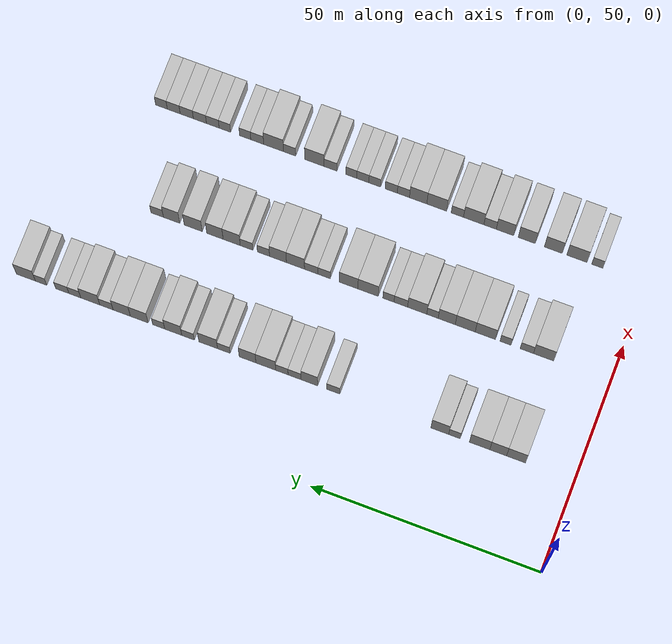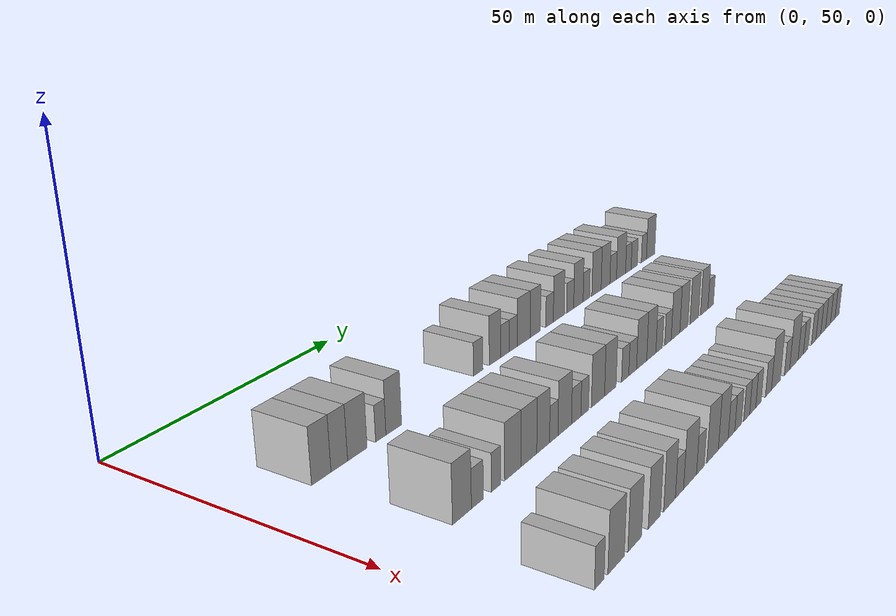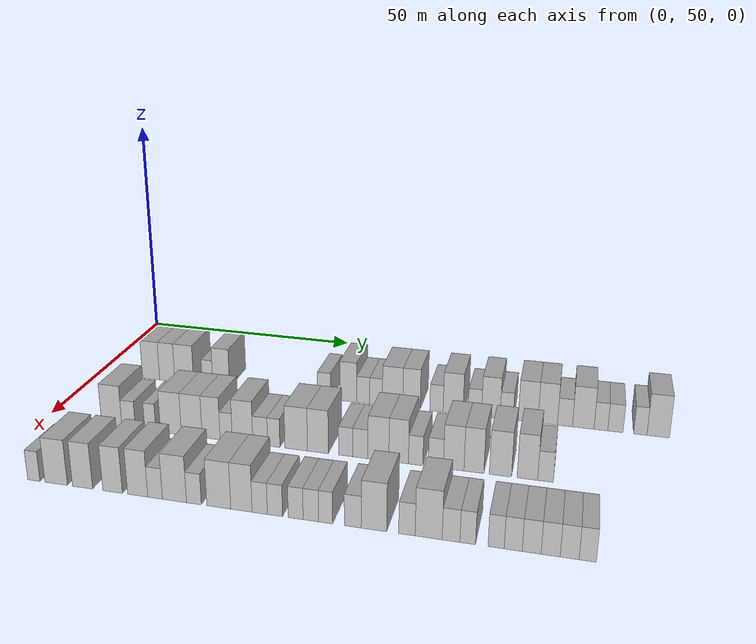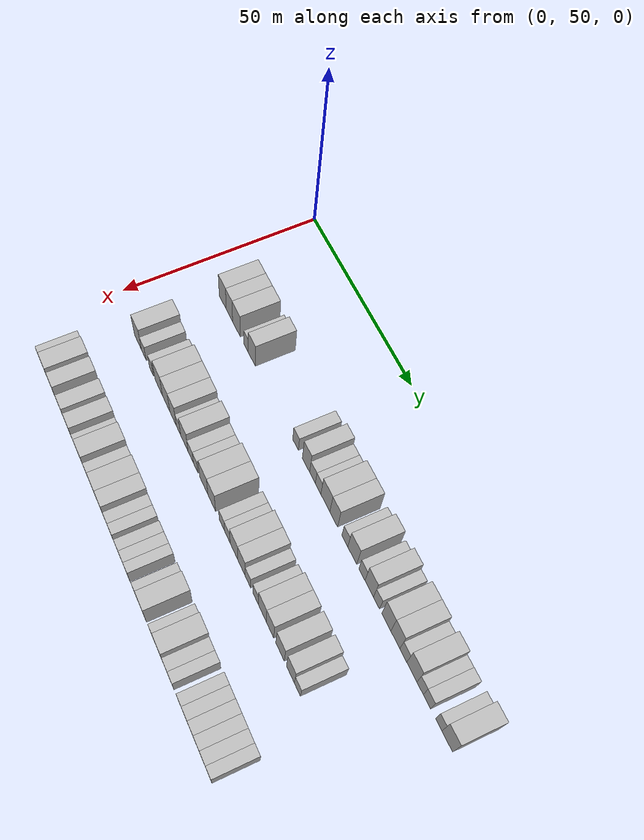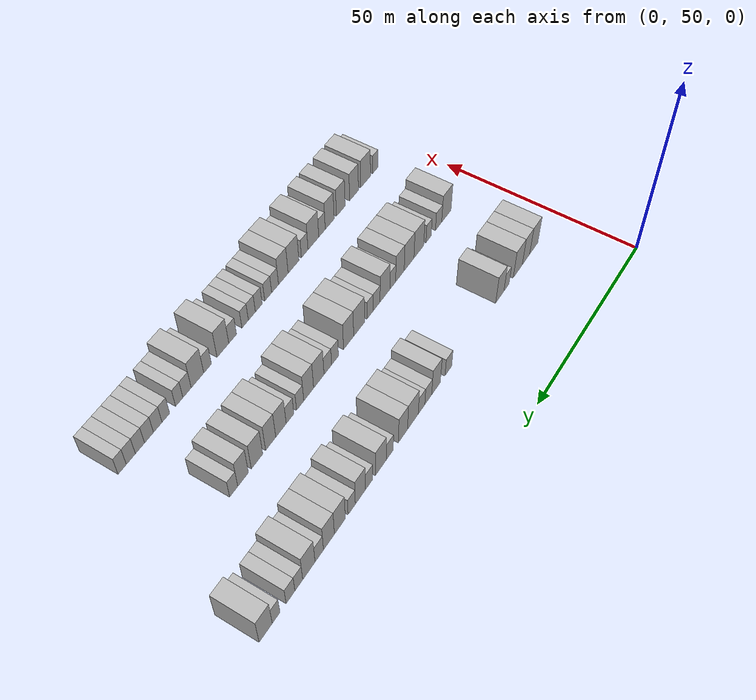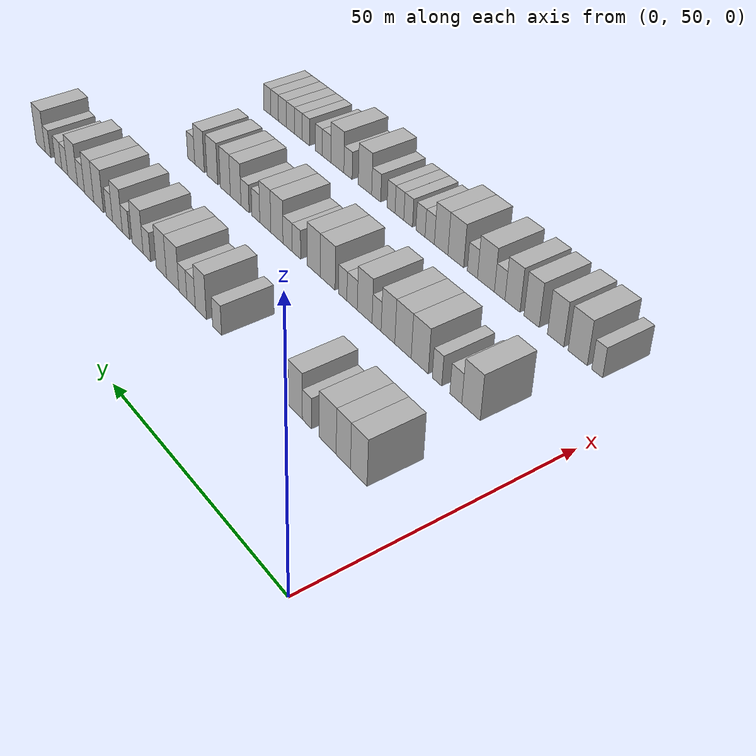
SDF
<sdf version="1.6">
 <world name="default">
  <model name="building_112">
   <static>1</static>
   <pose>25.0000 62.6723 0 0.000000 0.000000 0.000000</pose>
   <link name="link">
    <pose>0 0 4.50 0 0 0</pose>
    <collision name="collision"><geometry><box><size>10.0000 4.1048 9.0000</size></box></geometry></collision>
    <visual name="visual">
     <cast_shadows>0</cast_shadows>
     <geometry><box><size>10.0000 4.1048 9.0000</size></box></geometry>
     <material>
      <script>
       <uri>model://HANNAS_wall/materials/scripts</uri>
       <uri>model://HANNAS_wall/materials/textures</uri>
       <name>vrc/HANNAS_wall</name>
      </script>
     </material>
    </visual>
   </link>
  </model>
  <model name="building_113">
   <static>1</static>
   <pose>25.0000 66.5474 0 0.000000 0.000000 0.000000</pose>
   <link name="link">
    <pose>0 0 4.50 0 0 0</pose>
    <collision name="collision"><geometry><box><size>10.0000 3.6453 9.0000</size></box></geometry></collision>
    <visual name="visual">
     <cast_shadows>0</cast_shadows>
     <geometry><box><size>10.0000 3.6453 9.0000</size></box></geometry>
     <material>
      <script>
       <uri>model://HANNAS_wall/materials/scripts</uri>
       <uri>model://HANNAS_wall/materials/textures</uri>
       <name>vrc/HANNAS_wall</name>
      </script>
     </material>
    </visual>
   </link>
  </model>
  <model name="building_114">
   <static>1</static>
   <pose>25.0000 70.5929 0 0.000000 0.000000 0.000000</pose>
   <link name="link">
    <pose>0 0 4.50 0 0 0</pose>
    <collision name="collision"><geometry><box><size>10.0000 4.4458 9.0000</size></box></geometry></collision>
    <visual name="visual">
     <cast_shadows>0</cast_shadows>
     <geometry><box><size>10.0000 4.4458 9.0000</size></box></geometry>
     <material>
      <script>
       <uri>model://HANNAS_wall/materials/scripts</uri>
       <uri>model://HANNAS_wall/materials/textures</uri>
       <name>vrc/HANNAS_wall</name>
      </script>
     </material>
    </visual>
   </link>
  </model>
  <model name="building_115">
   <static>1</static>
   <pose>25.0000 76.0600 0 0.000000 0.000000 0.000000</pose>
   <link name="link">
    <pose>0 0 3.00 0 0 0</pose>
    <collision name="collision"><geometry><box><size>10.0000 2.4885 6.0000</size></box></geometry></collision>
    <visual name="visual">
     <cast_shadows>0</cast_shadows>
     <geometry><box><size>10.0000 2.4885 6.0000</size></box></geometry>
     <material>
      <script>
       <uri>model://HANNAS_wall/materials/scripts</uri>
       <uri>model://HANNAS_wall/materials/textures</uri>
       <name>vrc/HANNAS_wall</name>
      </script>
     </material>
    </visual>
   </link>
  </model>
  <model name="building_116">
   <static>1</static>
   <pose>25.0000 79.2473 0 0.000000 0.000000 0.000000</pose>
   <link name="link">
    <pose>0 0 4.50 0 0 0</pose>
    <collision name="collision"><geometry><box><size>10.0000 3.8861 9.0000</size></box></geometry></collision>
    <visual name="visual">
     <cast_shadows>0</cast_shadows>
     <geometry><box><size>10.0000 3.8861 9.0000</size></box></geometry>
     <material>
      <script>
       <uri>model://HANNAS_wall/materials/scripts</uri>
       <uri>model://HANNAS_wall/materials/textures</uri>
       <name>vrc/HANNAS_wall</name>
      </script>
     </material>
    </visual>
   </link>
  </model>
  <model name="building_117">
   <static>1</static>
   <pose>25.0000 102.5071 0 0.000000 0.000000 0.000000</pose>
   <link name="link">
    <pose>0 0 3.00 0 0 0</pose>
    <collision name="collision"><geometry><box><size>10.0000 2.8778 6.0000</size></box></geometry></collision>
    <visual name="visual">
     <cast_shadows>0</cast_shadows>
     <geometry><box><size>10.0000 2.8778 6.0000</size></box></geometry>
     <material>
      <script>
       <uri>model://HANNAS_wall/materials/scripts</uri>
       <uri>model://HANNAS_wall/materials/textures</uri>
       <name>vrc/HANNAS_wall</name>
      </script>
     </material>
    </visual>
   </link>
  </model>
  <model name="building_118">
   <static>1</static>
   <pose>25.0000 107.7739 0 0.000000 0.000000 0.000000</pose>
   <link name="link">
    <pose>0 0 4.50 0 0 0</pose>
    <collision name="collision"><geometry><box><size>10.0000 3.6558 9.0000</size></box></geometry></collision>
    <visual name="visual">
     <cast_shadows>0</cast_shadows>
     <geometry><box><size>10.0000 3.6558 9.0000</size></box></geometry>
     <material>
      <script>
       <uri>model://HANNAS_wall/materials/scripts</uri>
       <uri>model://HANNAS_wall/materials/textures</uri>
       <name>vrc/HANNAS_wall</name>
      </script>
     </material>
    </visual>
   </link>
  </model>
  <model name="building_119">
   <static>1</static>
   <pose>25.0000 111.0156 0 0.000000 0.000000 0.000000</pose>
   <link name="link">
    <pose>0 0 3.00 0 0 0</pose>
    <collision name="collision"><geometry><box><size>10.0000 2.8276 6.0000</size></box></geometry></collision>
    <visual name="visual">
     <cast_shadows>0</cast_shadows>
     <geometry><box><size>10.0000 2.8276 6.0000</size></box></geometry>
     <material>
      <script>
       <uri>model://HANNAS_wall/materials/scripts</uri>
       <uri>model://HANNAS_wall/materials/textures</uri>
       <name>vrc/HANNAS_wall</name>
      </script>
     </material>
    </visual>
   </link>
  </model>
  <model name="building_120">
   <static>1</static>
   <pose>25.0000 113.7852 0 0.000000 0.000000 0.000000</pose>
   <link name="link">
    <pose>0 0 3.00 0 0 0</pose>
    <collision name="collision"><geometry><box><size>10.0000 2.7114 6.0000</size></box></geometry></collision>
    <visual name="visual">
     <cast_shadows>0</cast_shadows>
     <geometry><box><size>10.0000 2.7114 6.0000</size></box></geometry>
     <material>
      <script>
       <uri>model://HANNAS_wall/materials/scripts</uri>
       <uri>model://HANNAS_wall/materials/textures</uri>
       <name>vrc/HANNAS_wall</name>
      </script>
     </material>
    </visual>
   </link>
  </model>
  <model name="building_121">
   <static>1</static>
   <pose>25.0000 117.3143 0 0.000000 0.000000 0.000000</pose>
   <link name="link">
    <pose>0 0 4.50 0 0 0</pose>
    <collision name="collision"><geometry><box><size>10.0000 4.3468 9.0000</size></box></geometry></collision>
    <visual name="visual">
     <cast_shadows>0</cast_shadows>
     <geometry><box><size>10.0000 4.3468 9.0000</size></box></geometry>
     <material>
      <script>
       <uri>model://HANNAS_wall/materials/scripts</uri>
       <uri>model://HANNAS_wall/materials/textures</uri>
       <name>vrc/HANNAS_wall</name>
      </script>
     </material>
    </visual>
   </link>
  </model>
  <model name="building_122">
   <static>1</static>
   <pose>25.0000 121.3257 0 0.000000 0.000000 0.000000</pose>
   <link name="link">
    <pose>0 0 4.50 0 0 0</pose>
    <collision name="collision"><geometry><box><size>10.0000 3.6759 9.0000</size></box></geometry></collision>
    <visual name="visual">
     <cast_shadows>0</cast_shadows>
     <geometry><box><size>10.0000 3.6759 9.0000</size></box></geometry>
     <material>
      <script>
       <uri>model://HANNAS_wall/materials/scripts</uri>
       <uri>model://HANNAS_wall/materials/textures</uri>
       <name>vrc/HANNAS_wall</name>
      </script>
     </material>
    </visual>
   </link>
  </model>
  <model name="building_123">
   <static>1</static>
   <pose>25.0000 126.5482 0 0.000000 0.000000 0.000000</pose>
   <link name="link">
    <pose>0 0 3.00 0 0 0</pose>
    <collision name="collision"><geometry><box><size>10.0000 2.7691 6.0000</size></box></geometry></collision>
    <visual name="visual">
     <cast_shadows>0</cast_shadows>
     <geometry><box><size>10.0000 2.7691 6.0000</size></box></geometry>
     <material>
      <script>
       <uri>model://HANNAS_wall/materials/scripts</uri>
       <uri>model://HANNAS_wall/materials/textures</uri>
       <name>vrc/HANNAS_wall</name>
      </script>
     </material>
    </visual>
   </link>
  </model>
  <model name="building_124">
   <static>1</static>
   <pose>25.0000 129.9904 0 0.000000 0.000000 0.000000</pose>
   <link name="link">
    <pose>0 0 4.50 0 0 0</pose>
    <collision name="collision"><geometry><box><size>10.0000 4.1153 9.0000</size></box></geometry></collision>
    <visual name="visual">
     <cast_shadows>0</cast_shadows>
     <geometry><box><size>10.0000 4.1153 9.0000</size></box></geometry>
     <material>
      <script>
       <uri>model://HANNAS_wall/materials/scripts</uri>
       <uri>model://HANNAS_wall/materials/textures</uri>
       <name>vrc/HANNAS_wall</name>
      </script>
     </material>
    </visual>
   </link>
  </model>
  <model name="building_125">
   <static>1</static>
   <pose>25.0000 134.4301 0 0.000000 0.000000 0.000000</pose>
   <link name="link">
    <pose>0 0 3.00 0 0 0</pose>
    <collision name="collision"><geometry><box><size>10.0000 2.7641 6.0000</size></box></geometry></collision>
    <visual name="visual">
     <cast_shadows>0</cast_shadows>
     <geometry><box><size>10.0000 2.7641 6.0000</size></box></geometry>
     <material>
      <script>
       <uri>model://HANNAS_wall/materials/scripts</uri>
       <uri>model://HANNAS_wall/materials/textures</uri>
       <name>vrc/HANNAS_wall</name>
      </script>
     </material>
    </visual>
   </link>
  </model>
  <model name="building_126">
   <static>1</static>
   <pose>25.0000 137.7048 0 0.000000 0.000000 0.000000</pose>
   <link name="link">
    <pose>0 0 4.50 0 0 0</pose>
    <collision name="collision"><geometry><box><size>10.0000 3.7851 9.0000</size></box></geometry></collision>
    <visual name="visual">
     <cast_shadows>0</cast_shadows>
     <geometry><box><size>10.0000 3.7851 9.0000</size></box></geometry>
     <material>
      <script>
       <uri>model://HANNAS_wall/materials/scripts</uri>
       <uri>model://HANNAS_wall/materials/textures</uri>
       <name>vrc/HANNAS_wall</name>
      </script>
     </material>
    </visual>
   </link>
  </model>
  <model name="building_127">
   <static>1</static>
   <pose>25.0000 140.9223 0 0.000000 0.000000 0.000000</pose>
   <link name="link">
    <pose>0 0 3.00 0 0 0</pose>
    <collision name="collision"><geometry><box><size>10.0000 2.6499 6.0000</size></box></geometry></collision>
    <visual name="visual">
     <cast_shadows>0</cast_shadows>
     <geometry><box><size>10.0000 2.6499 6.0000</size></box></geometry>
     <material>
      <script>
       <uri>model://HANNAS_wall/materials/scripts</uri>
       <uri>model://HANNAS_wall/materials/textures</uri>
       <name>vrc/HANNAS_wall</name>
      </script>
     </material>
    </visual>
   </link>
  </model>
  <model name="building_128">
   <static>1</static>
   <pose>25.0000 145.2119 0 0.000000 0.000000 0.000000</pose>
   <link name="link">
    <pose>0 0 4.50 0 0 0</pose>
    <collision name="collision"><geometry><box><size>10.0000 3.9294 9.0000</size></box></geometry></collision>
    <visual name="visual">
     <cast_shadows>0</cast_shadows>
     <geometry><box><size>10.0000 3.9294 9.0000</size></box></geometry>
     <material>
      <script>
       <uri>model://HANNAS_wall/materials/scripts</uri>
       <uri>model://HANNAS_wall/materials/textures</uri>
       <name>vrc/HANNAS_wall</name>
      </script>
     </material>
    </visual>
   </link>
  </model>
  <model name="building_129">
   <static>1</static>
   <pose>25.0000 149.1030 0 0.000000 0.000000 0.000000</pose>
   <link name="link">
    <pose>0 0 4.50 0 0 0</pose>
    <collision name="collision"><geometry><box><size>10.0000 3.8530 9.0000</size></box></geometry></collision>
    <visual name="visual">
     <cast_shadows>0</cast_shadows>
     <geometry><box><size>10.0000 3.8530 9.0000</size></box></geometry>
     <material>
      <script>
       <uri>model://HANNAS_wall/materials/scripts</uri>
       <uri>model://HANNAS_wall/materials/textures</uri>
       <name>vrc/HANNAS_wall</name>
      </script>
     </material>
    </visual>
   </link>
  </model>
  <model name="building_130">
   <static>1</static>
   <pose>25.0000 152.4961 0 0.000000 0.000000 0.000000</pose>
   <link name="link">
    <pose>0 0 3.00 0 0 0</pose>
    <collision name="collision"><geometry><box><size>10.0000 2.9331 6.0000</size></box></geometry></collision>
    <visual name="visual">
     <cast_shadows>0</cast_shadows>
     <geometry><box><size>10.0000 2.9331 6.0000</size></box></geometry>
     <material>
      <script>
       <uri>model://HANNAS_wall/materials/scripts</uri>
       <uri>model://HANNAS_wall/materials/textures</uri>
       <name>vrc/HANNAS_wall</name>
      </script>
     </material>
    </visual>
   </link>
  </model>
  <model name="building_131">
   <static>1</static>
   <pose>25.0000 156.0684 0 0.000000 0.000000 0.000000</pose>
   <link name="link">
    <pose>0 0 4.50 0 0 0</pose>
    <collision name="collision"><geometry><box><size>10.0000 4.2115 9.0000</size></box></geometry></collision>
    <visual name="visual">
     <cast_shadows>0</cast_shadows>
     <geometry><box><size>10.0000 4.2115 9.0000</size></box></geometry>
     <material>
      <script>
       <uri>model://HANNAS_wall/materials/scripts</uri>
       <uri>model://HANNAS_wall/materials/textures</uri>
       <name>vrc/HANNAS_wall</name>
      </script>
     </material>
    </visual>
   </link>
  </model>
  <model name="building_132">
   <static>1</static>
   <pose>25.0000 159.4920 0 0.000000 0.000000 0.000000</pose>
   <link name="link">
    <pose>0 0 3.00 0 0 0</pose>
    <collision name="collision"><geometry><box><size>10.0000 2.6358 6.0000</size></box></geometry></collision>
    <visual name="visual">
     <cast_shadows>0</cast_shadows>
     <geometry><box><size>10.0000 2.6358 6.0000</size></box></geometry>
     <material>
      <script>
       <uri>model://HANNAS_wall/materials/scripts</uri>
       <uri>model://HANNAS_wall/materials/textures</uri>
       <name>vrc/HANNAS_wall</name>
      </script>
     </material>
    </visual>
   </link>
  </model>
  <model name="building_133">
   <static>1</static>
   <pose>25.0000 162.2747 0 0.000000 0.000000 0.000000</pose>
   <link name="link">
    <pose>0 0 3.00 0 0 0</pose>
    <collision name="collision"><geometry><box><size>10.0000 2.9295 6.0000</size></box></geometry></collision>
    <visual name="visual">
     <cast_shadows>0</cast_shadows>
     <geometry><box><size>10.0000 2.9295 6.0000</size></box></geometry>
     <material>
      <script>
       <uri>model://HANNAS_wall/materials/scripts</uri>
       <uri>model://HANNAS_wall/materials/textures</uri>
       <name>vrc/HANNAS_wall</name>
      </script>
     </material>
    </visual>
   </link>
  </model>
  <model name="building_134">
   <static>1</static>
   <pose>25.0000 166.9979 0 0.000000 0.000000 0.000000</pose>
   <link name="link">
    <pose>0 0 3.00 0 0 0</pose>
    <collision name="collision"><geometry><box><size>10.0000 2.5170 6.0000</size></box></geometry></collision>
    <visual name="visual">
     <cast_shadows>0</cast_shadows>
     <geometry><box><size>10.0000 2.5170 6.0000</size></box></geometry>
     <material>
      <script>
       <uri>model://HANNAS_wall/materials/scripts</uri>
       <uri>model://HANNAS_wall/materials/textures</uri>
       <name>vrc/HANNAS_wall</name>
      </script>
     </material>
    </visual>
   </link>
  </model>
  <model name="building_135">
   <static>1</static>
   <pose>25.0000 170.3654 0 0.000000 0.000000 0.000000</pose>
   <link name="link">
    <pose>0 0 4.50 0 0 0</pose>
    <collision name="collision"><geometry><box><size>10.0000 4.2181 9.0000</size></box></geometry></collision>
    <visual name="visual">
     <cast_shadows>0</cast_shadows>
     <geometry><box><size>10.0000 4.2181 9.0000</size></box></geometry>
     <material>
      <script>
       <uri>model://HANNAS_wall/materials/scripts</uri>
       <uri>model://HANNAS_wall/materials/textures</uri>
       <name>vrc/HANNAS_wall</name>
      </script>
     </material>
    </visual>
   </link>
  </model>
  <model name="building_288">
   <static>1</static>
   <pose>47.0000 64.6336 0 0.000000 0.000000 0.000000</pose>
   <link name="link">
    <pose>0 0 4.50 0 0 0</pose>
    <collision name="collision"><geometry><box><size>10.0000 4.4258 9.0000</size></box></geometry></collision>
    <visual name="visual">
     <cast_shadows>0</cast_shadows>
     <geometry><box><size>10.0000 4.4258 9.0000</size></box></geometry>
     <material>
      <script>
       <uri>model://HANNAS_wall/materials/scripts</uri>
       <uri>model://HANNAS_wall/materials/textures</uri>
       <name>vrc/HANNAS_wall</name>
      </script>
     </material>
    </visual>
   </link>
  </model>
  <model name="building_289">
   <static>1</static>
   <pose>47.0000 68.3060 0 0.000000 0.000000 0.000000</pose>
   <link name="link">
    <pose>0 0 3.00 0 0 0</pose>
    <collision name="collision"><geometry><box><size>10.0000 2.9191 6.0000</size></box></geometry></collision>
    <visual name="visual">
     <cast_shadows>0</cast_shadows>
     <geometry><box><size>10.0000 2.9191 6.0000</size></box></geometry>
     <material>
      <script>
       <uri>model://HANNAS_wall/materials/scripts</uri>
       <uri>model://HANNAS_wall/materials/textures</uri>
       <name>vrc/HANNAS_wall</name>
      </script>
     </material>
    </visual>
   </link>
  </model>
  <model name="building_290">
   <static>1</static>
   <pose>47.0000 72.9693 0 0.000000 0.000000 0.000000</pose>
   <link name="link">
    <pose>0 0 3.00 0 0 0</pose>
    <collision name="collision"><geometry><box><size>10.0000 2.4073 6.0000</size></box></geometry></collision>
    <visual name="visual">
     <cast_shadows>0</cast_shadows>
     <geometry><box><size>10.0000 2.4073 6.0000</size></box></geometry>
     <material>
      <script>
       <uri>model://HANNAS_wall/materials/scripts</uri>
       <uri>model://HANNAS_wall/materials/textures</uri>
       <name>vrc/HANNAS_wall</name>
      </script>
     </material>
    </visual>
   </link>
  </model>
  <model name="building_291">
   <static>1</static>
   <pose>47.0000 77.3900 0 0.000000 0.000000 0.000000</pose>
   <link name="link">
    <pose>0 0 4.50 0 0 0</pose>
    <collision name="collision"><geometry><box><size>10.0000 4.4341 9.0000</size></box></geometry></collision>
    <visual name="visual">
     <cast_shadows>0</cast_shadows>
     <geometry><box><size>10.0000 4.4341 9.0000</size></box></geometry>
     <material>
      <script>
       <uri>model://HANNAS_wall/materials/scripts</uri>
       <uri>model://HANNAS_wall/materials/textures</uri>
       <name>vrc/HANNAS_wall</name>
      </script>
     </material>
    </visual>
   </link>
  </model>
  <model name="building_292">
   <static>1</static>
   <pose>47.0000 81.7889 0 0.000000 0.000000 0.000000</pose>
   <link name="link">
    <pose>0 0 4.50 0 0 0</pose>
    <collision name="collision"><geometry><box><size>10.0000 4.3637 9.0000</size></box></geometry></collision>
    <visual name="visual">
     <cast_shadows>0</cast_shadows>
     <geometry><box><size>10.0000 4.3637 9.0000</size></box></geometry>
     <material>
      <script>
       <uri>model://HANNAS_wall/materials/scripts</uri>
       <uri>model://HANNAS_wall/materials/textures</uri>
       <name>vrc/HANNAS_wall</name>
      </script>
     </material>
    </visual>
   </link>
  </model>
  <model name="building_293">
   <static>1</static>
   <pose>47.0000 85.8426 0 0.000000 0.000000 0.000000</pose>
   <link name="link">
    <pose>0 0 4.50 0 0 0</pose>
    <collision name="collision"><geometry><box><size>10.0000 3.7437 9.0000</size></box></geometry></collision>
    <visual name="visual">
     <cast_shadows>0</cast_shadows>
     <geometry><box><size>10.0000 3.7437 9.0000</size></box></geometry>
     <material>
      <script>
       <uri>model://HANNAS_wall/materials/scripts</uri>
       <uri>model://HANNAS_wall/materials/textures</uri>
       <name>vrc/HANNAS_wall</name>
      </script>
     </material>
    </visual>
   </link>
  </model>
  <model name="building_294">
   <static>1</static>
   <pose>47.0000 88.9719 0 0.000000 0.000000 0.000000</pose>
   <link name="link">
    <pose>0 0 3.00 0 0 0</pose>
    <collision name="collision"><geometry><box><size>10.0000 2.5150 6.0000</size></box></geometry></collision>
    <visual name="visual">
     <cast_shadows>0</cast_shadows>
     <geometry><box><size>10.0000 2.5150 6.0000</size></box></geometry>
     <material>
      <script>
       <uri>model://HANNAS_wall/materials/scripts</uri>
       <uri>model://HANNAS_wall/materials/textures</uri>
       <name>vrc/HANNAS_wall</name>
      </script>
     </material>
    </visual>
   </link>
  </model>
  <model name="building_295">
   <static>1</static>
   <pose>47.0000 92.3329 0 0.000000 0.000000 0.000000</pose>
   <link name="link">
    <pose>0 0 4.50 0 0 0</pose>
    <collision name="collision"><geometry><box><size>10.0000 4.2070 9.0000</size></box></geometry></collision>
    <visual name="visual">
     <cast_shadows>0</cast_shadows>
     <geometry><box><size>10.0000 4.2070 9.0000</size></box></geometry>
     <material>
      <script>
       <uri>model://HANNAS_wall/materials/scripts</uri>
       <uri>model://HANNAS_wall/materials/textures</uri>
       <name>vrc/HANNAS_wall</name>
      </script>
     </material>
    </visual>
   </link>
  </model>
  <model name="building_296">
   <static>1</static>
   <pose>47.0000 95.9313 0 0.000000 0.000000 0.000000</pose>
   <link name="link">
    <pose>0 0 3.00 0 0 0</pose>
    <collision name="collision"><geometry><box><size>10.0000 2.9898 6.0000</size></box></geometry></collision>
    <visual name="visual">
     <cast_shadows>0</cast_shadows>
     <geometry><box><size>10.0000 2.9898 6.0000</size></box></geometry>
     <material>
      <script>
       <uri>model://HANNAS_wall/materials/scripts</uri>
       <uri>model://HANNAS_wall/materials/textures</uri>
       <name>vrc/HANNAS_wall</name>
      </script>
     </material>
    </visual>
   </link>
  </model>
  <model name="building_297">
   <static>1</static>
   <pose>47.0000 98.6662 0 0.000000 0.000000 0.000000</pose>
   <link name="link">
    <pose>0 0 3.00 0 0 0</pose>
    <collision name="collision"><geometry><box><size>10.0000 2.4801 6.0000</size></box></geometry></collision>
    <visual name="visual">
     <cast_shadows>0</cast_shadows>
     <geometry><box><size>10.0000 2.4801 6.0000</size></box></geometry>
     <material>
      <script>
       <uri>model://HANNAS_wall/materials/scripts</uri>
       <uri>model://HANNAS_wall/materials/textures</uri>
       <name>vrc/HANNAS_wall</name>
      </script>
     </material>
    </visual>
   </link>
  </model>
  <model name="building_298">
   <static>1</static>
   <pose>47.0000 103.1551 0 0.000000 0.000000 0.000000</pose>
   <link name="link">
    <pose>0 0 4.50 0 0 0</pose>
    <collision name="collision"><geometry><box><size>10.0000 4.4978 9.0000</size></box></geometry></collision>
    <visual name="visual">
     <cast_shadows>0</cast_shadows>
     <geometry><box><size>10.0000 4.4978 9.0000</size></box></geometry>
     <material>
      <script>
       <uri>model://HANNAS_wall/materials/scripts</uri>
       <uri>model://HANNAS_wall/materials/textures</uri>
       <name>vrc/HANNAS_wall</name>
      </script>
     </material>
    </visual>
   </link>
  </model>
  <model name="building_299">
   <static>1</static>
   <pose>47.0000 107.4548 0 0.000000 0.000000 0.000000</pose>
   <link name="link">
    <pose>0 0 4.50 0 0 0</pose>
    <collision name="collision"><geometry><box><size>10.0000 4.1017 9.0000</size></box></geometry></collision>
    <visual name="visual">
     <cast_shadows>0</cast_shadows>
     <geometry><box><size>10.0000 4.1017 9.0000</size></box></geometry>
     <material>
      <script>
       <uri>model://HANNAS_wall/materials/scripts</uri>
       <uri>model://HANNAS_wall/materials/textures</uri>
       <name>vrc/HANNAS_wall</name>
      </script>
     </material>
    </visual>
   </link>
  </model>
  <model name="building_300">
   <static>1</static>
   <pose>47.0000 112.8591 0 0.000000 0.000000 0.000000</pose>
   <link name="link">
    <pose>0 0 3.00 0 0 0</pose>
    <collision name="collision"><geometry><box><size>10.0000 2.7068 6.0000</size></box></geometry></collision>
    <visual name="visual">
     <cast_shadows>0</cast_shadows>
     <geometry><box><size>10.0000 2.7068 6.0000</size></box></geometry>
     <material>
      <script>
       <uri>model://HANNAS_wall/materials/scripts</uri>
       <uri>model://HANNAS_wall/materials/textures</uri>
       <name>vrc/HANNAS_wall</name>
      </script>
     </material>
    </visual>
   </link>
  </model>
  <model name="building_301">
   <static>1</static>
   <pose>47.0000 115.6970 0 0.000000 0.000000 0.000000</pose>
   <link name="link">
    <pose>0 0 3.00 0 0 0</pose>
    <collision name="collision"><geometry><box><size>10.0000 2.9690 6.0000</size></box></geometry></collision>
    <visual name="visual">
     <cast_shadows>0</cast_shadows>
     <geometry><box><size>10.0000 2.9690 6.0000</size></box></geometry>
     <material>
      <script>
       <uri>model://HANNAS_wall/materials/scripts</uri>
       <uri>model://HANNAS_wall/materials/textures</uri>
       <name>vrc/HANNAS_wall</name>
      </script>
     </material>
    </visual>
   </link>
  </model>
  <model name="building_302">
   <static>1</static>
   <pose>47.0000 119.1814 0 0.000000 0.000000 0.000000</pose>
   <link name="link">
    <pose>0 0 4.50 0 0 0</pose>
    <collision name="collision"><geometry><box><size>10.0000 3.9997 9.0000</size></box></geometry></collision>
    <visual name="visual">
     <cast_shadows>0</cast_shadows>
     <geometry><box><size>10.0000 3.9997 9.0000</size></box></geometry>
     <material>
      <script>
       <uri>model://HANNAS_wall/materials/scripts</uri>
       <uri>model://HANNAS_wall/materials/textures</uri>
       <name>vrc/HANNAS_wall</name>
      </script>
     </material>
    </visual>
   </link>
  </model>
  <model name="building_303">
   <static>1</static>
   <pose>47.0000 123.0436 0 0.000000 0.000000 0.000000</pose>
   <link name="link">
    <pose>0 0 4.50 0 0 0</pose>
    <collision name="collision"><geometry><box><size>10.0000 3.7247 9.0000</size></box></geometry></collision>
    <visual name="visual">
     <cast_shadows>0</cast_shadows>
     <geometry><box><size>10.0000 3.7247 9.0000</size></box></geometry>
     <material>
      <script>
       <uri>model://HANNAS_wall/materials/scripts</uri>
       <uri>model://HANNAS_wall/materials/textures</uri>
       <name>vrc/HANNAS_wall</name>
      </script>
     </material>
    </visual>
   </link>
  </model>
  <model name="building_304">
   <static>1</static>
   <pose>47.0000 126.2578 0 0.000000 0.000000 0.000000</pose>
   <link name="link">
    <pose>0 0 3.00 0 0 0</pose>
    <collision name="collision"><geometry><box><size>10.0000 2.7038 6.0000</size></box></geometry></collision>
    <visual name="visual">
     <cast_shadows>0</cast_shadows>
     <geometry><box><size>10.0000 2.7038 6.0000</size></box></geometry>
     <material>
      <script>
       <uri>model://HANNAS_wall/materials/scripts</uri>
       <uri>model://HANNAS_wall/materials/textures</uri>
       <name>vrc/HANNAS_wall</name>
      </script>
     </material>
    </visual>
   </link>
  </model>
  <model name="building_305">
   <static>1</static>
   <pose>47.0000 130.0140 0 0.000000 0.000000 0.000000</pose>
   <link name="link">
    <pose>0 0 3.00 0 0 0</pose>
    <collision name="collision"><geometry><box><size>10.0000 2.8086 6.0000</size></box></geometry></collision>
    <visual name="visual">
     <cast_shadows>0</cast_shadows>
     <geometry><box><size>10.0000 2.8086 6.0000</size></box></geometry>
     <material>
      <script>
       <uri>model://HANNAS_wall/materials/scripts</uri>
       <uri>model://HANNAS_wall/materials/textures</uri>
       <name>vrc/HANNAS_wall</name>
      </script>
     </material>
    </visual>
   </link>
  </model>
  <model name="building_306">
   <static>1</static>
   <pose>47.0000 133.3162 0 0.000000 0.000000 0.000000</pose>
   <link name="link">
    <pose>0 0 4.50 0 0 0</pose>
    <collision name="collision"><geometry><box><size>10.0000 3.7959 9.0000</size></box></geometry></collision>
    <visual name="visual">
     <cast_shadows>0</cast_shadows>
     <geometry><box><size>10.0000 3.7959 9.0000</size></box></geometry>
     <material>
      <script>
       <uri>model://HANNAS_wall/materials/scripts</uri>
       <uri>model://HANNAS_wall/materials/textures</uri>
       <name>vrc/HANNAS_wall</name>
      </script>
     </material>
    </visual>
   </link>
  </model>
  <model name="building_307">
   <static>1</static>
   <pose>47.0000 137.0271 0 0.000000 0.000000 0.000000</pose>
   <link name="link">
    <pose>0 0 4.50 0 0 0</pose>
    <collision name="collision"><geometry><box><size>10.0000 3.6260 9.0000</size></box></geometry></collision>
    <visual name="visual">
     <cast_shadows>0</cast_shadows>
     <geometry><box><size>10.0000 3.6260 9.0000</size></box></geometry>
     <material>
      <script>
       <uri>model://HANNAS_wall/materials/scripts</uri>
       <uri>model://HANNAS_wall/materials/textures</uri>
       <name>vrc/HANNAS_wall</name>
      </script>
     </material>
    </visual>
   </link>
  </model>
  <model name="building_308">
   <static>1</static>
   <pose>47.0000 141.8413 0 0.000000 0.000000 0.000000</pose>
   <link name="link">
    <pose>0 0 4.50 0 0 0</pose>
    <collision name="collision"><geometry><box><size>10.0000 4.0023 9.0000</size></box></geometry></collision>
    <visual name="visual">
     <cast_shadows>0</cast_shadows>
     <geometry><box><size>10.0000 4.0023 9.0000</size></box></geometry>
     <material>
      <script>
       <uri>model://HANNAS_wall/materials/scripts</uri>
       <uri>model://HANNAS_wall/materials/textures</uri>
       <name>vrc/HANNAS_wall</name>
      </script>
     </material>
    </visual>
   </link>
  </model>
  <model name="building_309">
   <static>1</static>
   <pose>47.0000 146.6646 0 0.000000 0.000000 0.000000</pose>
   <link name="link">
    <pose>0 0 4.50 0 0 0</pose>
    <collision name="collision"><geometry><box><size>10.0000 3.6443 9.0000</size></box></geometry></collision>
    <visual name="visual">
     <cast_shadows>0</cast_shadows>
     <geometry><box><size>10.0000 3.6443 9.0000</size></box></geometry>
     <material>
      <script>
       <uri>model://HANNAS_wall/materials/scripts</uri>
       <uri>model://HANNAS_wall/materials/textures</uri>
       <name>vrc/HANNAS_wall</name>
      </script>
     </material>
    </visual>
   </link>
  </model>
  <model name="building_310">
   <static>1</static>
   <pose>47.0000 149.8694 0 0.000000 0.000000 0.000000</pose>
   <link name="link">
    <pose>0 0 3.00 0 0 0</pose>
    <collision name="collision"><geometry><box><size>10.0000 2.7654 6.0000</size></box></geometry></collision>
    <visual name="visual">
     <cast_shadows>0</cast_shadows>
     <geometry><box><size>10.0000 2.7654 6.0000</size></box></geometry>
     <material>
      <script>
       <uri>model://HANNAS_wall/materials/scripts</uri>
       <uri>model://HANNAS_wall/materials/textures</uri>
       <name>vrc/HANNAS_wall</name>
      </script>
     </material>
    </visual>
   </link>
  </model>
  <model name="building_467">
   <static>1</static>
   <pose>69.0000 60.7753 0 0.000000 0.000000 0.000000</pose>
   <link name="link">
    <pose>0 0 3.00 0 0 0</pose>
    <collision name="collision"><geometry><box><size>10.0000 2.4713 6.0000</size></box></geometry></collision>
    <visual name="visual">
     <cast_shadows>0</cast_shadows>
     <geometry><box><size>10.0000 2.4713 6.0000</size></box></geometry>
     <material>
      <script>
       <uri>model://HANNAS_wall/materials/scripts</uri>
       <uri>model://HANNAS_wall/materials/textures</uri>
       <name>vrc/HANNAS_wall</name>
      </script>
     </material>
    </visual>
   </link>
  </model>
  <model name="building_468">
   <static>1</static>
   <pose>69.0000 65.2417 0 0.000000 0.000000 0.000000</pose>
   <link name="link">
    <pose>0 0 4.50 0 0 0</pose>
    <collision name="collision"><geometry><box><size>10.0000 4.4615 9.0000</size></box></geometry></collision>
    <visual name="visual">
     <cast_shadows>0</cast_shadows>
     <geometry><box><size>10.0000 4.4615 9.0000</size></box></geometry>
     <material>
      <script>
       <uri>model://HANNAS_wall/materials/scripts</uri>
       <uri>model://HANNAS_wall/materials/textures</uri>
       <name>vrc/HANNAS_wall</name>
      </script>
     </material>
    </visual>
   </link>
  </model>
  <model name="building_469">
   <static>1</static>
   <pose>69.0000 70.4368 0 0.000000 0.000000 0.000000</pose>
   <link name="link">
    <pose>0 0 4.50 0 0 0</pose>
    <collision name="collision"><geometry><box><size>10.0000 3.9286 9.0000</size></box></geometry></collision>
    <visual name="visual">
     <cast_shadows>0</cast_shadows>
     <geometry><box><size>10.0000 3.9286 9.0000</size></box></geometry>
     <material>
      <script>
       <uri>model://HANNAS_wall/materials/scripts</uri>
       <uri>model://HANNAS_wall/materials/textures</uri>
       <name>vrc/HANNAS_wall</name>
      </script>
     </material>
    </visual>
   </link>
  </model>
  <model name="building_470">
   <static>1</static>
   <pose>69.0000 76.2832 0 0.000000 0.000000 0.000000</pose>
   <link name="link">
    <pose>0 0 4.50 0 0 0</pose>
    <collision name="collision"><geometry><box><size>10.0000 3.7643 9.0000</size></box></geometry></collision>
    <visual name="visual">
     <cast_shadows>0</cast_shadows>
     <geometry><box><size>10.0000 3.7643 9.0000</size></box></geometry>
     <material>
      <script>
       <uri>model://HANNAS_wall/materials/scripts</uri>
       <uri>model://HANNAS_wall/materials/textures</uri>
       <name>vrc/HANNAS_wall</name>
      </script>
     </material>
    </visual>
   </link>
  </model>
  <model name="building_471">
   <static>1</static>
   <pose>69.0000 81.0795 0 0.000000 0.000000 0.000000</pose>
   <link name="link">
    <pose>0 0 4.50 0 0 0</pose>
    <collision name="collision"><geometry><box><size>10.0000 3.8283 9.0000</size></box></geometry></collision>
    <visual name="visual">
     <cast_shadows>0</cast_shadows>
     <geometry><box><size>10.0000 3.8283 9.0000</size></box></geometry>
     <material>
      <script>
       <uri>model://HANNAS_wall/materials/scripts</uri>
       <uri>model://HANNAS_wall/materials/textures</uri>
       <name>vrc/HANNAS_wall</name>
      </script>
     </material>
    </visual>
   </link>
  </model>
  <model name="building_472">
   <static>1</static>
   <pose>69.0000 84.3694 0 0.000000 0.000000 0.000000</pose>
   <link name="link">
    <pose>0 0 3.00 0 0 0</pose>
    <collision name="collision"><geometry><box><size>10.0000 2.7515 6.0000</size></box></geometry></collision>
    <visual name="visual">
     <cast_shadows>0</cast_shadows>
     <geometry><box><size>10.0000 2.7515 6.0000</size></box></geometry>
     <material>
      <script>
       <uri>model://HANNAS_wall/materials/scripts</uri>
       <uri>model://HANNAS_wall/materials/textures</uri>
       <name>vrc/HANNAS_wall</name>
      </script>
     </material>
    </visual>
   </link>
  </model>
  <model name="building_473">
   <static>1</static>
   <pose>69.0000 87.9899 0 0.000000 0.000000 0.000000</pose>
   <link name="link">
    <pose>0 0 4.50 0 0 0</pose>
    <collision name="collision"><geometry><box><size>10.0000 4.4895 9.0000</size></box></geometry></collision>
    <visual name="visual">
     <cast_shadows>0</cast_shadows>
     <geometry><box><size>10.0000 4.4895 9.0000</size></box></geometry>
     <material>
      <script>
       <uri>model://HANNAS_wall/materials/scripts</uri>
       <uri>model://HANNAS_wall/materials/textures</uri>
       <name>vrc/HANNAS_wall</name>
      </script>
     </material>
    </visual>
   </link>
  </model>
  <model name="building_474">
   <static>1</static>
   <pose>69.0000 91.6067 0 0.000000 0.000000 0.000000</pose>
   <link name="link">
    <pose>0 0 3.00 0 0 0</pose>
    <collision name="collision"><geometry><box><size>10.0000 2.7441 6.0000</size></box></geometry></collision>
    <visual name="visual">
     <cast_shadows>0</cast_shadows>
     <geometry><box><size>10.0000 2.7441 6.0000</size></box></geometry>
     <material>
      <script>
       <uri>model://HANNAS_wall/materials/scripts</uri>
       <uri>model://HANNAS_wall/materials/textures</uri>
       <name>vrc/HANNAS_wall</name>
      </script>
     </material>
    </visual>
   </link>
  </model>
  <model name="building_475">
   <static>1</static>
   <pose>69.0000 96.1688 0 0.000000 0.000000 0.000000</pose>
   <link name="link">
    <pose>0 0 4.50 0 0 0</pose>
    <collision name="collision"><geometry><box><size>10.0000 4.3802 9.0000</size></box></geometry></collision>
    <visual name="visual">
     <cast_shadows>0</cast_shadows>
     <geometry><box><size>10.0000 4.3802 9.0000</size></box></geometry>
     <material>
      <script>
       <uri>model://HANNAS_wall/materials/scripts</uri>
       <uri>model://HANNAS_wall/materials/textures</uri>
       <name>vrc/HANNAS_wall</name>
      </script>
     </material>
    </visual>
   </link>
  </model>
  <model name="building_476">
   <static>1</static>
   <pose>69.0000 100.2795 0 0.000000 0.000000 0.000000</pose>
   <link name="link">
    <pose>0 0 4.50 0 0 0</pose>
    <collision name="collision"><geometry><box><size>10.0000 3.8412 9.0000</size></box></geometry></collision>
    <visual name="visual">
     <cast_shadows>0</cast_shadows>
     <geometry><box><size>10.0000 3.8412 9.0000</size></box></geometry>
     <material>
      <script>
       <uri>model://HANNAS_wall/materials/scripts</uri>
       <uri>model://HANNAS_wall/materials/textures</uri>
       <name>vrc/HANNAS_wall</name>
      </script>
     </material>
    </visual>
   </link>
  </model>
  <model name="building_477">
   <static>1</static>
   <pose>69.0000 103.5525 0 0.000000 0.000000 0.000000</pose>
   <link name="link">
    <pose>0 0 3.00 0 0 0</pose>
    <collision name="collision"><geometry><box><size>10.0000 2.7048 6.0000</size></box></geometry></collision>
    <visual name="visual">
     <cast_shadows>0</cast_shadows>
     <geometry><box><size>10.0000 2.7048 6.0000</size></box></geometry>
     <material>
      <script>
       <uri>model://HANNAS_wall/materials/scripts</uri>
       <uri>model://HANNAS_wall/materials/textures</uri>
       <name>vrc/HANNAS_wall</name>
      </script>
     </material>
    </visual>
   </link>
  </model>
  <model name="building_478">
   <static>1</static>
   <pose>69.0000 106.2544 0 0.000000 0.000000 0.000000</pose>
   <link name="link">
    <pose>0 0 3.00 0 0 0</pose>
    <collision name="collision"><geometry><box><size>10.0000 2.6991 6.0000</size></box></geometry></collision>
    <visual name="visual">
     <cast_shadows>0</cast_shadows>
     <geometry><box><size>10.0000 2.6991 6.0000</size></box></geometry>
     <material>
      <script>
       <uri>model://HANNAS_wall/materials/scripts</uri>
       <uri>model://HANNAS_wall/materials/textures</uri>
       <name>vrc/HANNAS_wall</name>
      </script>
     </material>
    </visual>
   </link>
  </model>
  <model name="building_479">
   <static>1</static>
   <pose>69.0000 109.9095 0 0.000000 0.000000 0.000000</pose>
   <link name="link">
    <pose>0 0 3.00 0 0 0</pose>
    <collision name="collision"><geometry><box><size>10.0000 2.6112 6.0000</size></box></geometry></collision>
    <visual name="visual">
     <cast_shadows>0</cast_shadows>
     <geometry><box><size>10.0000 2.6112 6.0000</size></box></geometry>
     <material>
      <script>
       <uri>model://HANNAS_wall/materials/scripts</uri>
       <uri>model://HANNAS_wall/materials/textures</uri>
       <name>vrc/HANNAS_wall</name>
      </script>
     </material>
    </visual>
   </link>
  </model>
  <model name="building_480">
   <static>1</static>
   <pose>69.0000 112.5516 0 0.000000 0.000000 0.000000</pose>
   <link name="link">
    <pose>0 0 3.00 0 0 0</pose>
    <collision name="collision"><geometry><box><size>10.0000 2.6729 6.0000</size></box></geometry></collision>
    <visual name="visual">
     <cast_shadows>0</cast_shadows>
     <geometry><box><size>10.0000 2.6729 6.0000</size></box></geometry>
     <material>
      <script>
       <uri>model://HANNAS_wall/materials/scripts</uri>
       <uri>model://HANNAS_wall/materials/textures</uri>
       <name>vrc/HANNAS_wall</name>
      </script>
     </material>
    </visual>
   </link>
  </model>
  <model name="building_481">
   <static>1</static>
   <pose>69.0000 115.1069 0 0.000000 0.000000 0.000000</pose>
   <link name="link">
    <pose>0 0 3.00 0 0 0</pose>
    <collision name="collision"><geometry><box><size>10.0000 2.4378 6.0000</size></box></geometry></collision>
    <visual name="visual">
     <cast_shadows>0</cast_shadows>
     <geometry><box><size>10.0000 2.4378 6.0000</size></box></geometry>
     <material>
      <script>
       <uri>model://HANNAS_wall/materials/scripts</uri>
       <uri>model://HANNAS_wall/materials/textures</uri>
       <name>vrc/HANNAS_wall</name>
      </script>
     </material>
    </visual>
   </link>
  </model>
  <model name="building_482">
   <static>1</static>
   <pose>69.0000 119.7555 0 0.000000 0.000000 0.000000</pose>
   <link name="link">
    <pose>0 0 3.00 0 0 0</pose>
    <collision name="collision"><geometry><box><size>10.0000 2.8594 6.0000</size></box></geometry></collision>
    <visual name="visual">
     <cast_shadows>0</cast_shadows>
     <geometry><box><size>10.0000 2.8594 6.0000</size></box></geometry>
     <material>
      <script>
       <uri>model://HANNAS_wall/materials/scripts</uri>
       <uri>model://HANNAS_wall/materials/textures</uri>
       <name>vrc/HANNAS_wall</name>
      </script>
     </material>
    </visual>
   </link>
  </model>
  <model name="building_483">
   <static>1</static>
   <pose>69.0000 123.3384 0 0.000000 0.000000 0.000000</pose>
   <link name="link">
    <pose>0 0 4.50 0 0 0</pose>
    <collision name="collision"><geometry><box><size>10.0000 4.3064 9.0000</size></box></geometry></collision>
    <visual name="visual">
     <cast_shadows>0</cast_shadows>
     <geometry><box><size>10.0000 4.3064 9.0000</size></box></geometry>
     <material>
      <script>
       <uri>model://HANNAS_wall/materials/scripts</uri>
       <uri>model://HANNAS_wall/materials/textures</uri>
       <name>vrc/HANNAS_wall</name>
      </script>
     </material>
    </visual>
   </link>
  </model>
  <model name="building_484">
   <static>1</static>
   <pose>69.0000 128.8567 0 0.000000 0.000000 0.000000</pose>
   <link name="link">
    <pose>0 0 3.00 0 0 0</pose>
    <collision name="collision"><geometry><box><size>10.0000 2.7302 6.0000</size></box></geometry></collision>
    <visual name="visual">
     <cast_shadows>0</cast_shadows>
     <geometry><box><size>10.0000 2.7302 6.0000</size></box></geometry>
     <material>
      <script>
       <uri>model://HANNAS_wall/materials/scripts</uri>
       <uri>model://HANNAS_wall/materials/textures</uri>
       <name>vrc/HANNAS_wall</name>
      </script>
     </material>
    </visual>
   </link>
  </model>
  <model name="building_485">
   <static>1</static>
   <pose>69.0000 132.4333 0 0.000000 0.000000 0.000000</pose>
   <link name="link">
    <pose>0 0 4.50 0 0 0</pose>
    <collision name="collision"><geometry><box><size>10.0000 4.4230 9.0000</size></box></geometry></collision>
    <visual name="visual">
     <cast_shadows>0</cast_shadows>
     <geometry><box><size>10.0000 4.4230 9.0000</size></box></geometry>
     <material>
      <script>
       <uri>model://HANNAS_wall/materials/scripts</uri>
       <uri>model://HANNAS_wall/materials/textures</uri>
       <name>vrc/HANNAS_wall</name>
      </script>
     </material>
    </visual>
   </link>
  </model>
  <model name="building_486">
   <static>1</static>
   <pose>69.0000 136.0858 0 0.000000 0.000000 0.000000</pose>
   <link name="link">
    <pose>0 0 3.00 0 0 0</pose>
    <collision name="collision"><geometry><box><size>10.0000 2.8821 6.0000</size></box></geometry></collision>
    <visual name="visual">
     <cast_shadows>0</cast_shadows>
     <geometry><box><size>10.0000 2.8821 6.0000</size></box></geometry>
     <material>
      <script>
       <uri>model://HANNAS_wall/materials/scripts</uri>
       <uri>model://HANNAS_wall/materials/textures</uri>
       <name>vrc/HANNAS_wall</name>
      </script>
     </material>
    </visual>
   </link>
  </model>
  <model name="building_487">
   <static>1</static>
   <pose>69.0000 138.7793 0 0.000000 0.000000 0.000000</pose>
   <link name="link">
    <pose>0 0 3.00 0 0 0</pose>
    <collision name="collision"><geometry><box><size>10.0000 2.5048 6.0000</size></box></geometry></collision>
    <visual name="visual">
     <cast_shadows>0</cast_shadows>
     <geometry><box><size>10.0000 2.5048 6.0000</size></box></geometry>
     <material>
      <script>
       <uri>model://HANNAS_wall/materials/scripts</uri>
       <uri>model://HANNAS_wall/materials/textures</uri>
       <name>vrc/HANNAS_wall</name>
      </script>
     </material>
    </visual>
   </link>
  </model>
  <model name="building_488">
   <static>1</static>
   <pose>69.0000 143.3143 0 0.000000 0.000000 0.000000</pose>
   <link name="link">
    <pose>0 0 3.00 0 0 0</pose>
    <collision name="collision"><geometry><box><size>10.0000 2.5652 6.0000</size></box></geometry></collision>
    <visual name="visual">
     <cast_shadows>0</cast_shadows>
     <geometry><box><size>10.0000 2.5652 6.0000</size></box></geometry>
     <material>
      <script>
       <uri>model://HANNAS_wall/materials/scripts</uri>
       <uri>model://HANNAS_wall/materials/textures</uri>
       <name>vrc/HANNAS_wall</name>
      </script>
     </material>
    </visual>
   </link>
  </model>
  <model name="building_489">
   <static>1</static>
   <pose>69.0000 146.0191 0 0.000000 0.000000 0.000000</pose>
   <link name="link">
    <pose>0 0 3.00 0 0 0</pose>
    <collision name="collision"><geometry><box><size>10.0000 2.8443 6.0000</size></box></geometry></collision>
    <visual name="visual">
     <cast_shadows>0</cast_shadows>
     <geometry><box><size>10.0000 2.8443 6.0000</size></box></geometry>
     <material>
      <script>
       <uri>model://HANNAS_wall/materials/scripts</uri>
       <uri>model://HANNAS_wall/materials/textures</uri>
       <name>vrc/HANNAS_wall</name>
      </script>
     </material>
    </visual>
   </link>
  </model>
  <model name="building_490">
   <static>1</static>
   <pose>69.0000 148.9115 0 0.000000 0.000000 0.000000</pose>
   <link name="link">
    <pose>0 0 3.00 0 0 0</pose>
    <collision name="collision"><geometry><box><size>10.0000 2.9405 6.0000</size></box></geometry></collision>
    <visual name="visual">
     <cast_shadows>0</cast_shadows>
     <geometry><box><size>10.0000 2.9405 6.0000</size></box></geometry>
     <material>
      <script>
       <uri>model://HANNAS_wall/materials/scripts</uri>
       <uri>model://HANNAS_wall/materials/textures</uri>
       <name>vrc/HANNAS_wall</name>
      </script>
     </material>
    </visual>
   </link>
  </model>
  <model name="building_491">
   <static>1</static>
   <pose>69.0000 151.8574 0 0.000000 0.000000 0.000000</pose>
   <link name="link">
    <pose>0 0 3.00 0 0 0</pose>
    <collision name="collision"><geometry><box><size>10.0000 2.9512 6.0000</size></box></geometry></collision>
    <visual name="visual">
     <cast_shadows>0</cast_shadows>
     <geometry><box><size>10.0000 2.9512 6.0000</size></box></geometry>
     <material>
      <script>
       <uri>model://HANNAS_wall/materials/scripts</uri>
       <uri>model://HANNAS_wall/materials/textures</uri>
       <name>vrc/HANNAS_wall</name>
      </script>
     </material>
    </visual>
   </link>
  </model>
  <model name="building_492">
   <static>1</static>
   <pose>69.0000 154.7811 0 0.000000 0.000000 0.000000</pose>
   <link name="link">
    <pose>0 0 3.00 0 0 0</pose>
    <collision name="collision"><geometry><box><size>10.0000 2.8962 6.0000</size></box></geometry></collision>
    <visual name="visual">
     <cast_shadows>0</cast_shadows>
     <geometry><box><size>10.0000 2.8962 6.0000</size></box></geometry>
     <material>
      <script>
       <uri>model://HANNAS_wall/materials/scripts</uri>
       <uri>model://HANNAS_wall/materials/textures</uri>
       <name>vrc/HANNAS_wall</name>
      </script>
     </material>
    </visual>
   </link>
  </model>
  <model name="building_493">
   <static>1</static>
   <pose>69.0000 157.5424 0 0.000000 0.000000 0.000000</pose>
   <link name="link">
    <pose>0 0 3.00 0 0 0</pose>
    <collision name="collision"><geometry><box><size>10.0000 2.6264 6.0000</size></box></geometry></collision>
    <visual name="visual">
     <cast_shadows>0</cast_shadows>
     <geometry><box><size>10.0000 2.6264 6.0000</size></box></geometry>
     <material>
      <script>
       <uri>model://HANNAS_wall/materials/scripts</uri>
       <uri>model://HANNAS_wall/materials/textures</uri>
       <name>vrc/HANNAS_wall</name>
      </script>
     </material>
    </visual>
   </link>
  </model>
 </world>
</sdf>
